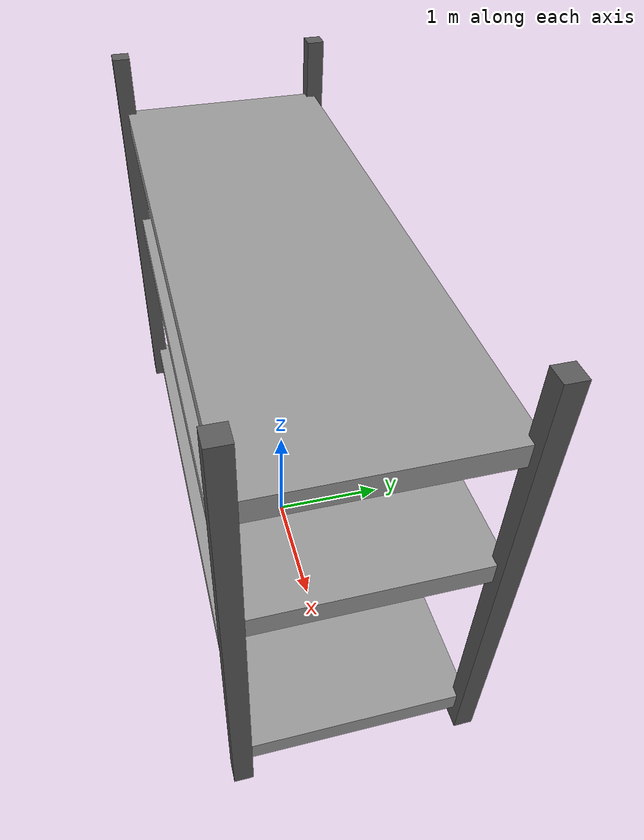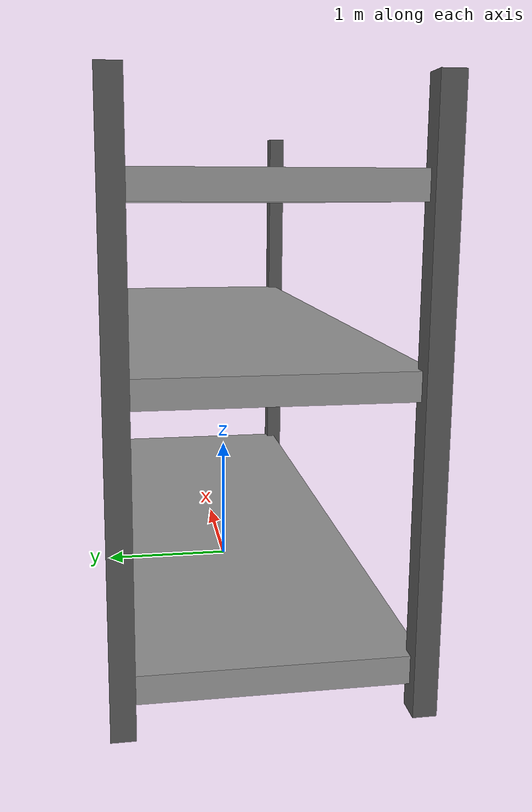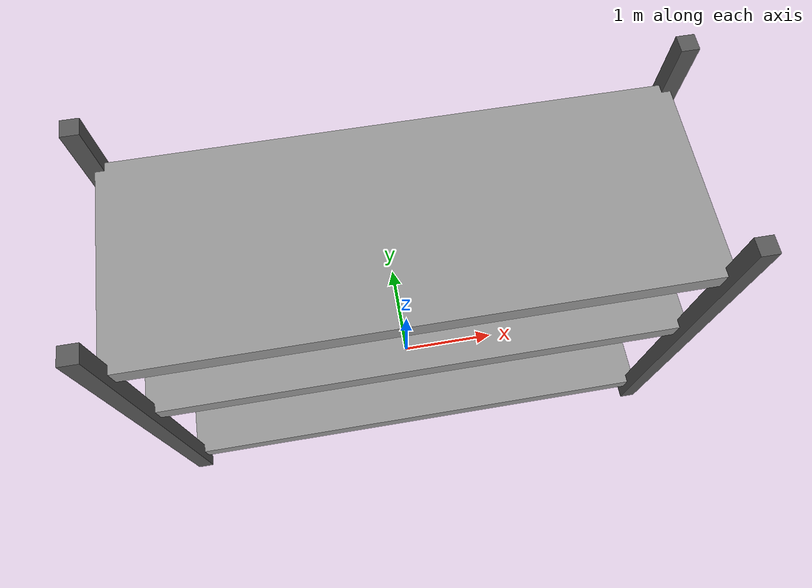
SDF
<?xml version="1.0"?>
<sdf version="1.10">
  <model name="empty_shelf">
    <static>true</static>
    <pose>0 0 0 0 0 0</pose>
    <!-- 창고형 선반: 기본 크기 1.5배 (길이 4.8m, 깊이 1.8m, 높이 3.75m) -->

    <!-- 기둥 4개 -->
    <link name="post_fl">
      <pose>2.4 0.9 1.875 0 0 0</pose>
      <visual name="vis">
        <geometry><box><size>0.15 0.15 3.75</size></box></geometry>
        <material><ambient>0.25 0.25 0.25 1</ambient><diffuse>0.35 0.35 0.35 1</diffuse></material>
      </visual>
      <collision name="col"><geometry><box><size>0.15 0.15 3.75</size></box></geometry></collision>
    </link>
    <link name="post_fr">
      <pose>2.4 -0.9 1.875 0 0 0</pose>
      <visual name="vis">
        <geometry><box><size>0.15 0.15 3.75</size></box></geometry>
        <material><ambient>0.25 0.25 0.25 1</ambient><diffuse>0.35 0.35 0.35 1</diffuse></material>
      </visual>
      <collision name="col"><geometry><box><size>0.15 0.15 3.75</size></box></geometry></collision>
    </link>
    <link name="post_rl">
      <pose>-2.4 0.9 1.875 0 0 0</pose>
      <visual name="vis">
        <geometry><box><size>0.15 0.15 3.75</size></box></geometry>
        <material><ambient>0.25 0.25 0.25 1</ambient><diffuse>0.35 0.35 0.35 1</diffuse></material>
      </visual>
      <collision name="col"><geometry><box><size>0.15 0.15 3.75</size></box></geometry></collision>
    </link>
    <link name="post_rr">
      <pose>-2.4 -0.9 1.875 0 0 0</pose>
      <visual name="vis">
        <geometry><box><size>0.15 0.15 3.75</size></box></geometry>
        <material><ambient>0.25 0.25 0.25 1</ambient><diffuse>0.35 0.35 0.35 1</diffuse></material>
      </visual>
      <collision name="col"><geometry><box><size>0.15 0.15 3.75</size></box></geometry></collision>
    </link>

    <!-- 선반 판 3개 (두께 0.18m) -->
    <link name="shelf_bottom">
      <pose>0 0 0.27 0 0 0</pose>
      <visual name="vis">
        <geometry><box><size>4.8 1.8 0.18</size></box></geometry>
        <material><ambient>0.45 0.45 0.45 1</ambient><diffuse>0.6 0.6 0.6 1</diffuse></material>
      </visual>
      <collision name="col"><geometry><box><size>4.8 1.8 0.18</size></box></geometry></collision>
    </link>
    <link name="shelf_mid">
      <pose>0 0 2.025 0 0 0</pose>
      <visual name="vis">
        <geometry><box><size>4.8 1.8 0.18</size></box></geometry>
        <material><ambient>0.45 0.45 0.45 1</ambient><diffuse>0.6 0.6 0.6 1</diffuse></material>
      </visual>
      <collision name="col"><geometry><box><size>4.8 1.8 0.18</size></box></geometry></collision>
    </link>
    <link name="shelf_top">
      <pose>0 0 3.15 0 0 0</pose>
      <visual name="vis">
        <geometry><box><size>4.8 1.8 0.18</size></box></geometry>
        <material><ambient>0.45 0.45 0.45 1</ambient><diffuse>0.6 0.6 0.6 1</diffuse></material>
      </visual>
      <collision name="col"><geometry><box><size>4.8 1.8 0.18</size></box></geometry></collision>
    </link>

  </model>
</sdf>
